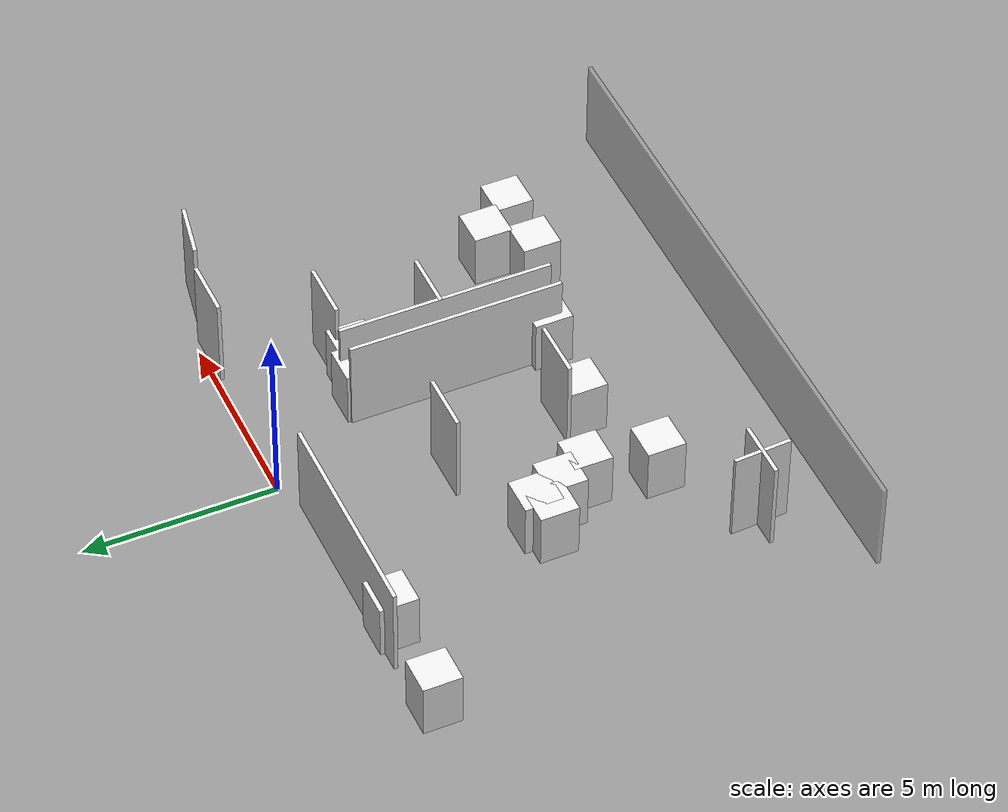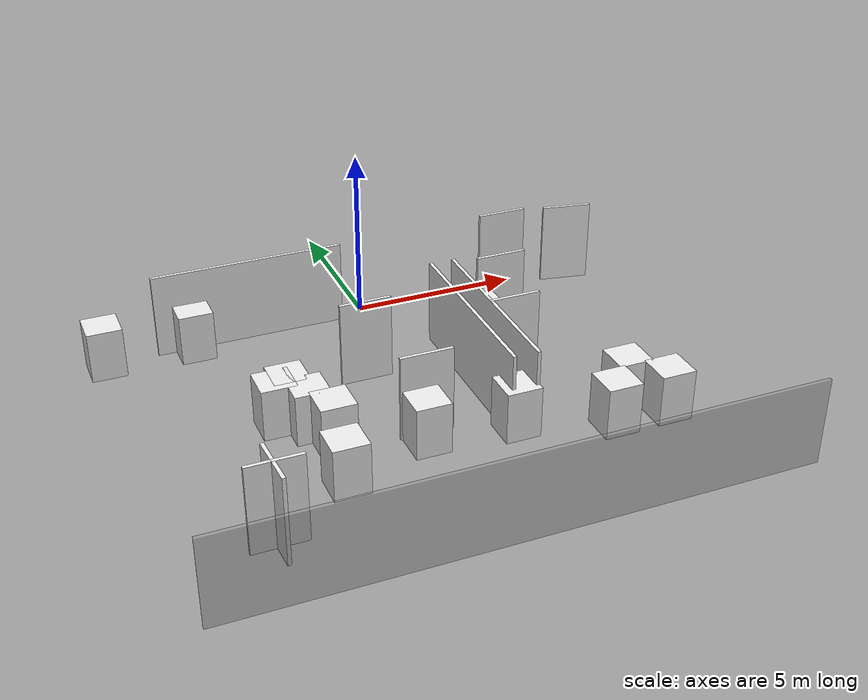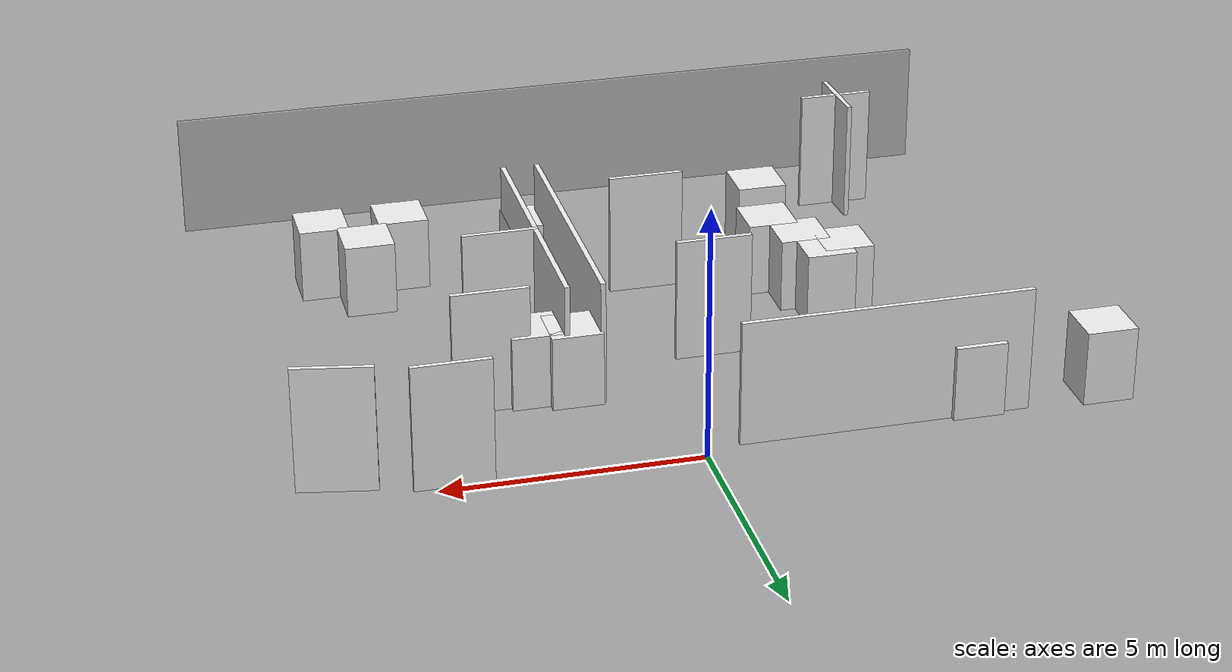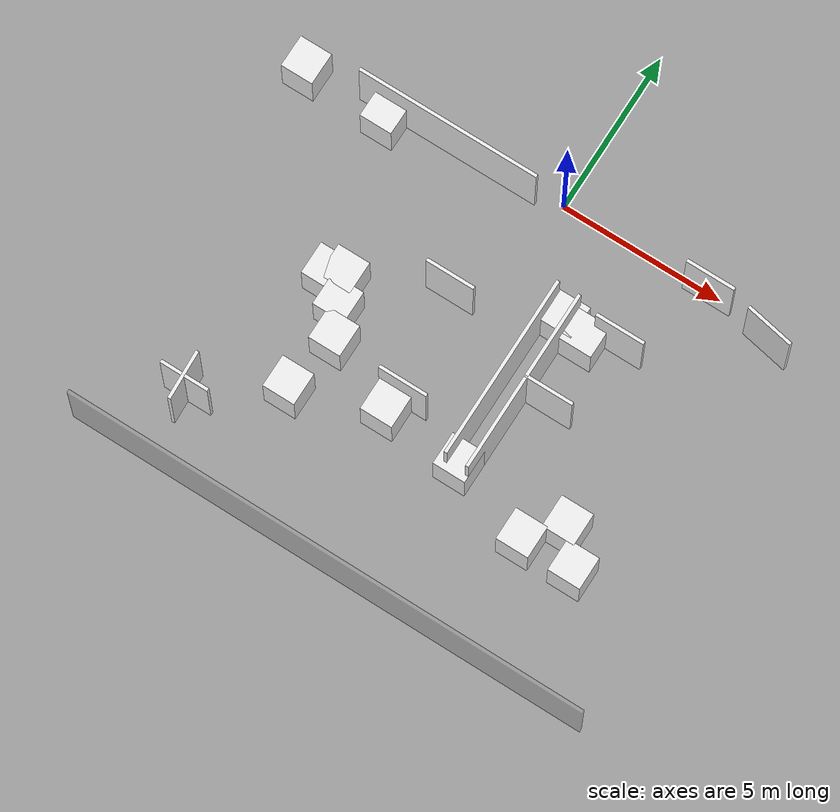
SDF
<sdf version="1.7">
 <world name="default">
  <model name="box_1">
   <pose>0.05 -12.05 1.25 0 -0 0</pose>
   <static>1</static>
   <link name="link">
    <collision name="collision"><geometry><box><size>16.1 0.1 2.5</size></box></geometry></collision>
    <visual name="visual">
     <geometry><box><size>16.1 0.1 2.5</size></box></geometry>
     <material>
      <script><name>Gazebo/GreyTransparent</name><uri>file://media/materials/scripts/gazebo.material</uri></script>
     </material>
    </visual>
   </link>
  </model>
  <model name="box_8_clone">
   <pose>6.73576 -0.524414 1.25 0 0 -0.191358</pose>
   <static>1</static>
   <link name="link">
    <collision name="collision"><geometry><box><size>1.5 0.1 2.5</size></box></geometry></collision>
    <visual name="visual">
     <geometry><box><size>1.5 0.1 2.5</size></box></geometry>
     <material>
      <script><name>Gazebo/White</name><uri>file://media/materials/scripts/gazebo.material</uri></script>
     </material>
    </visual>
   </link>
  </model>
  <model name="box_9_clone_clone_0">
   <pose>-3.41271 -8.44795 0.75 0 -0 0</pose>
   <static>1</static>
   <link name="link">
    <collision name="collision"><geometry><box><size>1 1 1.5</size></box></geometry></collision>
    <visual name="visual">
     <geometry><box><size>1 1 1.5</size></box></geometry>
     <material>
      <script><name>Gazebo/White</name><uri>file://media/materials/scripts/gazebo.material</uri></script>
     </material>
    </visual>
   </link>
  </model>
  <model name="box_9_clone_clone_1">
   <pose>-0.878991 -7.58043 0.75 0 -0 0</pose>
   <static>1</static>
   <link name="link">
    <collision name="collision"><geometry><box><size>1 1 1.5</size></box></geometry></collision>
    <visual name="visual">
     <geometry><box><size>1 1 1.5</size></box></geometry>
     <material>
      <script><name>Gazebo/White</name><uri>file://media/materials/scripts/gazebo.material</uri></script>
     </material>
    </visual>
   </link>
  </model>
  <model name="box_9_clone_clone_2">
   <pose>-3.11126 -6.66453 0.75 0 -0 0</pose>
   <static>1</static>
   <link name="link">
    <collision name="collision"><geometry><box><size>1 1 1.5</size></box></geometry></collision>
    <visual name="visual">
     <geometry><box><size>1 1 1.5</size></box></geometry>
     <material>
      <script><name>Gazebo/White</name><uri>file://media/materials/scripts/gazebo.material</uri></script>
     </material>
    </visual>
   </link>
  </model>
  <model name="box_9_clone_clone_3">
   <pose>5.68831 -8.62591 0.75 0 -0 0</pose>
   <static>1</static>
   <link name="link">
    <collision name="collision"><geometry><box><size>1 1 1.5</size></box></geometry></collision>
    <visual name="visual">
     <geometry><box><size>1 1 1.5</size></box></geometry>
     <material>
      <script><name>Gazebo/White</name><uri>file://media/materials/scripts/gazebo.material</uri></script>
     </material>
    </visual>
   </link>
  </model>
  <model name="box_9_clone_clone_4">
   <pose>4.92737 -7.69876 0.75 0 -0 0</pose>
   <static>1</static>
   <link name="link">
    <collision name="collision"><geometry><box><size>1 1 1.5</size></box></geometry></collision>
    <visual name="visual">
     <geometry><box><size>1 1 1.5</size></box></geometry>
     <material>
      <script><name>Gazebo/White</name><uri>file://media/materials/scripts/gazebo.material</uri></script>
     </material>
    </visual>
   </link>
  </model>
  <model name="box_8_clone_clone_13_clone_clone_clone_clone_0">
   <pose>3.43194 -2.73975 1.25 0 -0 0</pose>
   <static>1</static>
   <link name="link">
    <collision name="collision"><geometry><box><size>1.5 0.100001 2.5</size></box></geometry></collision>
    <visual name="visual">
     <geometry><box><size>1.5 0.100001 2.5</size></box></geometry>
     <material>
      <script><name>Gazebo/White</name><uri>file://media/materials/scripts/gazebo.material</uri></script>
     </material>
    </visual>
   </link>
  </model>
  <model name="box_8_clone_clone_11_clone">
   <pose>-1.19486 -3.87817 1.25 0 -0 0</pose>
   <static>1</static>
   <link name="link">
    <collision name="collision"><geometry><box><size>1.5 0.0999969 2.5</size></box></geometry></collision>
    <visual name="visual">
     <geometry><box><size>1.5 0.0999969 2.5</size></box></geometry>
     <material>
      <script><name>Gazebo/White</name><uri>file://media/materials/scripts/gazebo.material</uri></script>
     </material>
    </visual>
   </link>
  </model>
  <model name="box_9_clone_clone_7_clone_clone">
   <pose>-7.89766 -0.627489 0.75 0 -0 0</pose>
   <static>1</static>
   <link name="link">
    <collision name="collision"><geometry><box><size>1 1 1.5</size></box></geometry></collision>
    <visual name="visual">
     <geometry><box><size>1 1 1.5</size></box></geometry>
     <material>
      <script><name>Gazebo/White</name><uri>file://media/materials/scripts/gazebo.material</uri></script>
     </material>
    </visual>
   </link>
  </model>
  <model name="box_9_clone_clone_7_clone_clone_3">
   <pose>-4.25734 -5.25172 0.75 0 -0 0</pose>
   <static>1</static>
   <link name="link">
    <collision name="collision"><geometry><box><size>0.999992 0.999999 1.5</size></box></geometry></collision>
    <visual name="visual">
     <geometry><box><size>0.999992 0.999999 1.5</size></box></geometry>
     <material>
      <script><name>Gazebo/White</name><uri>file://media/materials/scripts/gazebo.material</uri></script>
     </material>
    </visual>
   </link>
  </model>
  <model name="box_9_clone_clone_7_clone_clone_4">
   <pose>-3.83027 -5.04481 0.75 0 -0 0</pose>
   <static>1</static>
   <link name="link">
    <collision name="collision"><geometry><box><size>1 1 1.5</size></box></geometry></collision>
    <visual name="visual">
     <geometry><box><size>1 1 1.5</size></box></geometry>
     <material>
      <script><name>Gazebo/White</name><uri>file://media/materials/scripts/gazebo.material</uri></script>
     </material>
    </visual>
   </link>
  </model>
  <model name="box_9_clone_clone_7_clone_clone_5">
   <pose>-3.52537 -5.82067 0.75 0 -0 0</pose>
   <static>1</static>
   <link name="link">
    <collision name="collision"><geometry><box><size>1 1 1.5</size></box></geometry></collision>
    <visual name="visual">
     <geometry><box><size>1 1 1.5</size></box></geometry>
     <material>
      <script><name>Gazebo/White</name><uri>file://media/materials/scripts/gazebo.material</uri></script>
     </material>
    </visual>
   </link>
  </model>
  <model name="box_9_clone_clone_5_clone_2_clone_0_clone_0">
   <pose>4.08001 -8.6431 0.75 0 -0 0</pose>
   <static>1</static>
   <link name="link">
    <collision name="collision"><geometry><box><size>1 1 1.5</size></box></geometry></collision>
    <visual name="visual">
     <geometry><box><size>1 1 1.5</size></box></geometry>
     <material>
      <script><name>Gazebo/White</name><uri>file://media/materials/scripts/gazebo.material</uri></script>
     </material>
    </visual>
   </link>
  </model>
  <model name="box_9_clone_clone_7_clone_clone_clone">
   <pose>-5.32159 -0.673379 0.75 0 -0 0</pose>
   <static>1</static>
   <link name="link">
    <collision name="collision"><geometry><box><size>1 1 1.5</size></box></geometry></collision>
    <visual name="visual">
     <geometry><box><size>1 1 1.5</size></box></geometry>
     <material>
      <script><name>Gazebo/White</name><uri>file://media/materials/scripts/gazebo.material</uri></script>
     </material>
    </visual>
   </link>
  </model>
  <model name="box_6_clone_clone_3_clone_clone_clone_clone_0">
   <pose>2.0182 -5.31678 1.25 0 -0 0</pose>
   <static>1</static>
   <link name="link">
    <collision name="collision"><geometry><box><size>0.1 5.60332 2.5</size></box></geometry></collision>
    <visual name="visual">
     <geometry><box><size>0.1 5.60332 2.5</size></box></geometry>
     <material>
      <script><name>Gazebo/White</name><uri>file://media/materials/scripts/gazebo.material</uri></script>
     </material>
    </visual>
   </link>
  </model>
  <model name="box_6_clone_clone_3_clone_clone_clone_clone_0_clone">
   <pose>1.33283 -5.29976 1.25 0 -0 0</pose>
   <static>1</static>
   <link name="link">
    <collision name="collision"><geometry><box><size>0.1 5.60332 2.5</size></box></geometry></collision>
    <visual name="visual">
     <geometry><box><size>0.1 5.60332 2.5</size></box></geometry>
     <material>
      <script><name>Gazebo/White</name><uri>file://media/materials/scripts/gazebo.material</uri></script>
     </material>
    </visual>
   </link>
  </model>
  <model name="box_9_clone_clone_5_clone_2_clone_0_clone_clone">
   <pose>1.83634 -2.91858 0.75 0 -0 0</pose>
   <static>1</static>
   <link name="link">
    <collision name="collision"><geometry><box><size>1 1 1.5</size></box></geometry></collision>
    <visual name="visual">
     <geometry><box><size>1 1 1.5</size></box></geometry>
     <material>
      <script><name>Gazebo/White</name><uri>file://media/materials/scripts/gazebo.material</uri></script>
     </material>
    </visual>
   </link>
  </model>
  <model name="box_8_clone_clone">
   <pose>4.67136 -0.169302 1.25 0 -0 0</pose>
   <static>1</static>
   <link name="link">
    <collision name="collision"><geometry><box><size>1.5 0.1 2.5</size></box></geometry></collision>
    <visual name="visual">
     <geometry><box><size>1.5 0.1 2.5</size></box></geometry>
     <material>
      <script><name>Gazebo/White</name><uri>file://media/materials/scripts/gazebo.material</uri></script>
     </material>
    </visual>
   </link>
  </model>
  <model name="box_9_clone_clone_5_clone_2_clone_0_clone_0_clone">
   <pose>1.56966 -7.808 0.75 0 -0 0</pose>
   <static>1</static>
   <link name="link">
    <collision name="collision"><geometry><box><size>1 1 1.5</size></box></geometry></collision>
    <visual name="visual">
     <geometry><box><size>1 1 1.5</size></box></geometry>
     <material>
      <script><name>Gazebo/White</name><uri>file://media/materials/scripts/gazebo.material</uri></script>
     </material>
    </visual>
   </link>
  </model>
  <model name="box_8_clone_clone_3_clone_clone_clone">
   <pose>-3.52289 -0.339317 1.25 0 -0 0</pose>
   <static>1</static>
   <link name="link">
    <collision name="collision"><geometry><box><size>5.64961 0.1 2.5</size></box></geometry></collision>
    <visual name="visual">
     <geometry><box><size>5.64961 0.1 2.5</size></box></geometry>
     <material>
      <script><name>Gazebo/White</name><uri>file://media/materials/scripts/gazebo.material</uri></script>
     </material>
    </visual>
   </link>
  </model>
  <model name="box_9_clone_clone_5_clone_2_clone_0_clone_0_clone_0">
   <pose>2.56687 -3.08492 0.75 0 -0 0</pose>
   <static>1</static>
   <link name="link">
    <collision name="collision"><geometry><box><size>1 1 1.5</size></box></geometry></collision>
    <visual name="visual">
     <geometry><box><size>1 1 1.5</size></box></geometry>
     <material>
      <script><name>Gazebo/White</name><uri>file://media/materials/scripts/gazebo.material</uri></script>
     </material>
    </visual>
   </link>
  </model>
  <model name="box_8_clone_clone_11_clone_clone">
   <pose>2.72179 -5.17165 1.25 0 -0 0</pose>
   <static>1</static>
   <link name="link">
    <collision name="collision"><geometry><box><size>1.5 0.1 2.5</size></box></geometry></collision>
    <visual name="visual">
     <geometry><box><size>1.5 0.1 2.5</size></box></geometry>
     <material>
      <script><name>Gazebo/White</name><uri>file://media/materials/scripts/gazebo.material</uri></script>
     </material>
    </visual>
   </link>
  </model>
  <model name="box_8_clone_clone_11_clone_clone_0">
   <pose>-5.67141 -10.0374 1.25 0 -0 1.62008</pose>
   <static>1</static>
   <link name="link">
    <collision name="collision"><geometry><box><size>1.49999 0.1 2.5</size></box></geometry></collision>
    <visual name="visual">
     <geometry><box><size>1.49999 0.1 2.5</size></box></geometry>
     <material>
      <script><name>Gazebo/White</name><uri>file://media/materials/scripts/gazebo.material</uri></script>
     </material>
    </visual>
   </link>
  </model>
  <model name="box_8_clone_clone_11_clone_clone_1">
   <pose>-5.63429 -10.0383 1.25 0 -0 0</pose>
   <static>1</static>
   <link name="link">
    <collision name="collision"><geometry><box><size>1.50001 0.0999999 2.5</size></box></geometry></collision>
    <visual name="visual">
     <geometry><box><size>1.50001 0.0999999 2.5</size></box></geometry>
     <material>
      <script><name>Gazebo/White</name><uri>file://media/materials/scripts/gazebo.material</uri></script>
     </material>
    </visual>
   </link>
  </model>
  <model name="box_8_clone_clone_11_clone_clone_1_clone">
   <pose>-0.668626 -7.0443 1.25 0 -0 0</pose>
   <static>1</static>
   <link name="link">
    <collision name="collision"><geometry><box><size>1.5 0.1 2.5</size></box></geometry></collision>
    <visual name="visual">
     <geometry><box><size>1.5 0.1 2.5</size></box></geometry>
     <material>
      <script><name>Gazebo/White</name><uri>file://media/materials/scripts/gazebo.material</uri></script>
     </material>
    </visual>
   </link>
  </model>
 </world>
</sdf>
